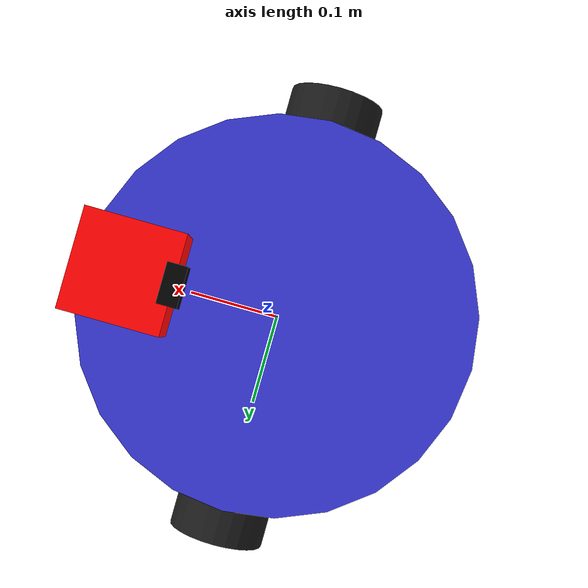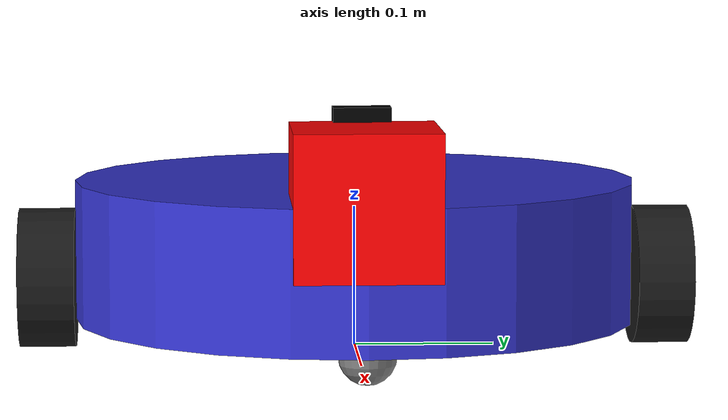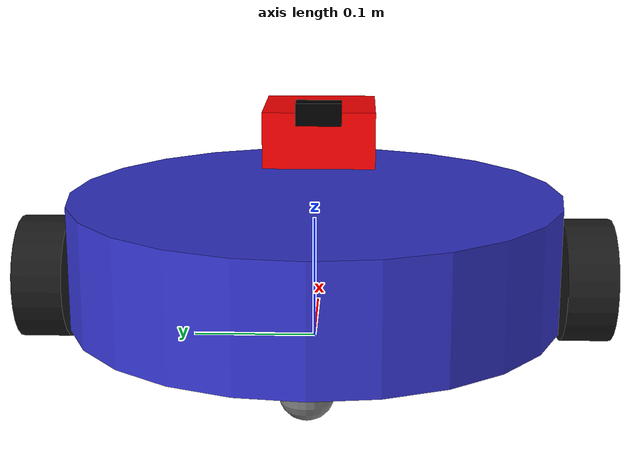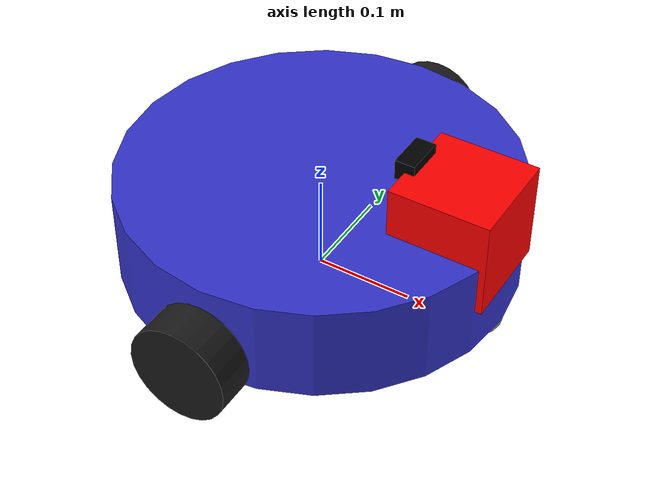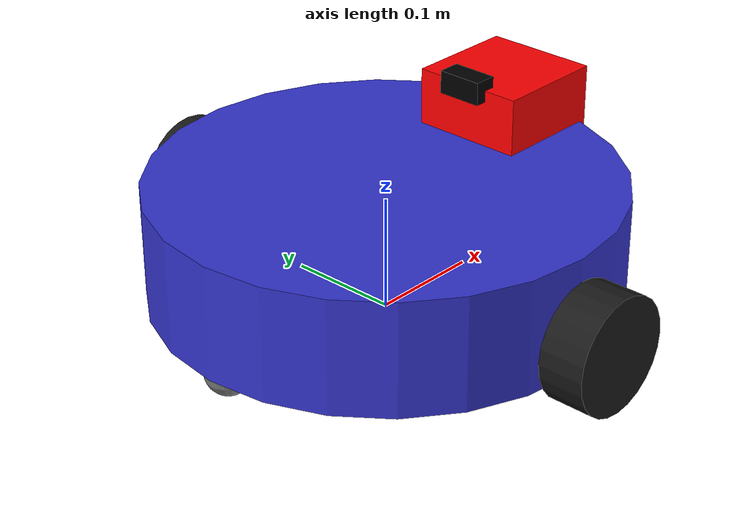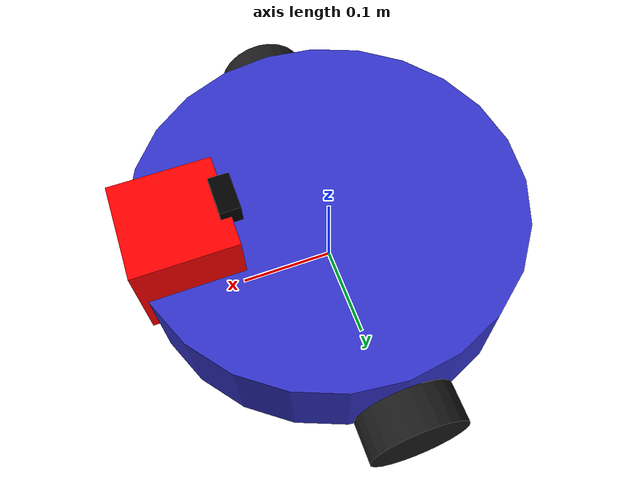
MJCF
<mujoco model="xrobocon_robot">
  <compiler angle="degree" coordinate="local" inertiafromgeom="true"/>
  <option timestep="0.002" gravity="0 0 -9.81"/>

  <default>
    <joint armature="0.01" damping="0.1"/>
    <geom friction="0.8" solimp="0.9 0.95 0.001 0.5 2" solref="0.02 1"/>
    <motor ctrllimited="true" ctrlrange="-1.0 1.0"/>
  </default>

  <worldbody>
    <!-- Main Body (Cylinder) -->
    <body name="base_link" pos="0 0 0.07">
      <freejoint/>
      <geom type="cylinder" size="0.2 0.05" rgba="0.2 0.2 0.8 1" mass="5"/>

      <!-- Visual Marker for Front -->
      <geom type="box" pos="0.15 0 0.05" size="0.05 0.05 0.05" rgba="1 0 0 1" mass="0.1"/>

      <!-- Left Wheel -->
      <body name="left_wheel" pos="0 0.22 -0.02" zaxis="0 1 0">
        <joint name="left_wheel_joint" type="hinge" axis="0 0 1" damping="0.1" armature="0.01"/>
        <geom type="cylinder" size="0.05 0.02" rgba="0.1 0.1 0.1 1" mass="1" friction="1.0 0.005 0.0001"/>
      </body>

      <!-- Right Wheel -->
      <body name="right_wheel" pos="0 -0.22 -0.02" zaxis="0 1 0">
        <joint name="right_wheel_joint" type="hinge" axis="0 0 1" damping="0.1" armature="0.01"/>
        <geom type="cylinder" size="0.05 0.02" rgba="0.1 0.1 0.1 1" mass="1" friction="1.0 0.005 0.0001"/>
      </body>

      <!-- Caster Wheels (Front/Back for stability) -->
      <body name="front_caster" pos="0.18 0 -0.05">
        <geom type="sphere" size="0.02" rgba="0.5 0.5 0.5 1" mass="0.1" friction="0.1"/>
      </body>
      <body name="back_caster" pos="-0.18 0 -0.05">
        <geom type="sphere" size="0.02" rgba="0.5 0.5 0.5 1" mass="0.1" friction="0.1"/>
      </body>

      <!-- Camera -->
      <body name="camera_link" pos="0.1 0 0.1">
        <geom type="box" size="0.01 0.02 0.01" rgba="0 0 0 1"/>
        <camera name="robot_camera" pos="0 0 0" euler="90 -90 0" fovy="60"/>
      </body>
    </body>
  </worldbody>

  <actuator>
    <motor name="left_motor" joint="left_wheel_joint" gear="50"/>
    <motor name="right_motor" joint="right_wheel_joint" gear="50"/>
  </actuator>
</mujoco>
